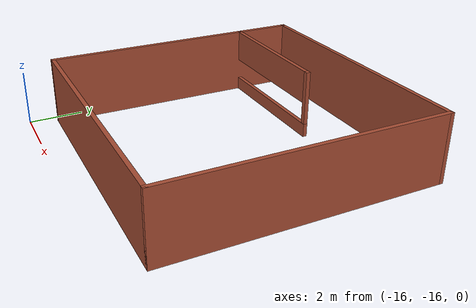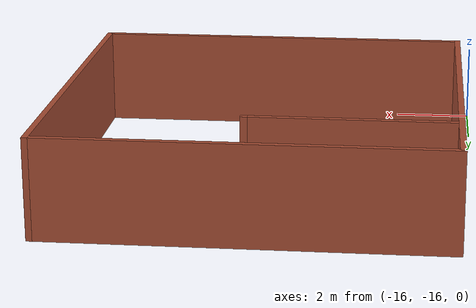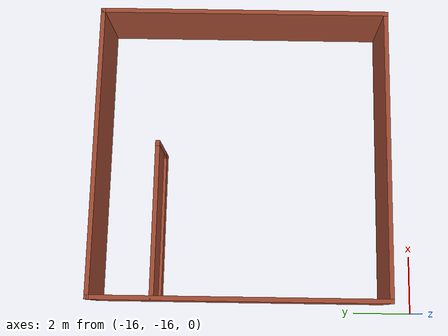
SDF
<?xml version='1.0'?>
<sdf version='1.7'>
  <model name='kitchen'>
    <pose>-7.84879 -7.5056 0 0 -0 0</pose>
    <link name='Wall_35'>
      <collision name='Wall_35_Collision'>
        <geometry>
          <box>
            <size>10 0.15 2.5</size>
          </box>
        </geometry>
        <pose>0 0 1.25 0 -0 0</pose>
      </collision>
      <visual name='Wall_35_Visual'>
        <pose>0 0 1.25 0 -0 0</pose>
        <geometry>
          <box>
            <size>10 0.15 2.5</size>
          </box>
        </geometry>
        <material>
          <script>
            <uri>file://media/materials/scripts/gazebo.material</uri>
            <name>Gazebo/Bricks</name>
          </script>
          <ambient>1 1 1 1</ambient>
        </material>
        <meta>
          <layer>0</layer>
        </meta>
      </visual>
      <pose>-2.84879 -7.4306 0 0 -0 0</pose>
    </link>
    <link name='Wall_36'>
      <collision name='Wall_36_Collision'>
        <geometry>
          <box>
            <size>10 0.15 2.5</size>
          </box>
        </geometry>
        <pose>0 0 1.25 0 -0 0</pose>
      </collision>
      <visual name='Wall_36_Visual'>
        <pose>0 0 1.25 0 -0 0</pose>
        <geometry>
          <box>
            <size>10 0.15 2.5</size>
          </box>
        </geometry>
        <material>
          <script>
            <uri>file://media/materials/scripts/gazebo.material</uri>
            <name>Gazebo/Bricks</name>
          </script>
          <ambient>1 1 1 1</ambient>
        </material>
        <meta>
          <layer>0</layer>
        </meta>
      </visual>
      <pose>2.07621 -2.5056 0 0 -0 1.5708</pose>
    </link>
    <link name='Wall_37'>
      <collision name='Wall_37_Collision'>
        <geometry>
          <box>
            <size>10 0.15 2.5</size>
          </box>
        </geometry>
        <pose>0 0 1.25 0 -0 0</pose>
      </collision>
      <visual name='Wall_37_Visual'>
        <pose>0 0 1.25 0 -0 0</pose>
        <geometry>
          <box>
            <size>10 0.15 2.5</size>
          </box>
        </geometry>
        <material>
          <script>
            <uri>file://media/materials/scripts/gazebo.material</uri>
            <name>Gazebo/Bricks</name>
          </script>
          <ambient>1 1 1 1</ambient>
        </material>
        <meta>
          <layer>0</layer>
        </meta>
      </visual>
      <pose>-2.84879 2.4194 0 0 -0 3.14159</pose>
    </link>
    <link name='Wall_38'>
      <collision name='Wall_38_Collision'>
        <geometry>
          <box>
            <size>10 0.15 2.5</size>
          </box>
        </geometry>
        <pose>0 0 1.25 0 -0 0</pose>
      </collision>
      <visual name='Wall_38_Visual'>
        <pose>0 0 1.25 0 -0 0</pose>
        <geometry>
          <box>
            <size>10 0.15 2.5</size>
          </box>
        </geometry>
        <material>
          <script>
            <uri>file://media/materials/scripts/gazebo.material</uri>
            <name>Gazebo/Bricks</name>
          </script>
          <ambient>1 1 1 1</ambient>
        </material>
        <meta>
          <layer>0</layer>
        </meta>
      </visual>
      <pose>-7.77379 -2.5056 0 0 -0 -1.5708</pose>
    </link>
    <link name='Wall_40'>
      <pose>-5.19337 0.325862 0 0 -0 0</pose>
      <visual name='Wall_40_Visual_0'>
        <pose>-2.59038 0 1.25 0 -0 0</pose>
        <geometry>
          <box>
            <size>0.069235 0.15 2.5</size>
          </box>
        </geometry>
        <material>
          <script>
            <uri>file://media/materials/scripts/gazebo.material</uri>
            <name>Gazebo/Bricks</name>
          </script>
          <ambient>1 1 1 1</ambient>
        </material>
        <meta>
          <layer>0</layer>
        </meta>
      </visual>
      <collision name='Wall_40_Collision_0'>
        <geometry>
          <box>
            <size>0.069235 0.15 2.5</size>
          </box>
        </geometry>
        <pose>-2.59038 0 1.25 0 -0 0</pose>
      </collision>
      <visual name='Wall_40_Visual_1'>
        <pose>0.034617 0 0.25 0 -0 0</pose>
        <geometry>
          <box>
            <size>5.18077 0.15 0.5</size>
          </box>
        </geometry>
        <material>
          <script>
            <uri>file://media/materials/scripts/gazebo.material</uri>
            <name>Gazebo/Bricks</name>
          </script>
          <ambient>1 1 1 1</ambient>
        </material>
        <meta>
          <layer>0</layer>
        </meta>
      </visual>
      <collision name='Wall_40_Collision_1'>
        <geometry>
          <box>
            <size>5.18077 0.15 0.5</size>
          </box>
        </geometry>
        <pose>0.034617 0 0.25 0 -0 0</pose>
      </collision>
      <visual name='Wall_40_Visual_2'>
        <pose>2.53462 0 1.5 0 -0 0</pose>
        <geometry>
          <box>
            <size>0.180765 0.15 2</size>
          </box>
        </geometry>
        <material>
          <script>
            <uri>file://media/materials/scripts/gazebo.material</uri>
            <name>Gazebo/Bricks</name>
          </script>
          <ambient>1 1 1 1</ambient>
        </material>
        <meta>
          <layer>0</layer>
        </meta>
      </visual>
      <collision name='Wall_40_Collision_2'>
        <geometry>
          <box>
            <size>0.180765 0.15 2</size>
          </box>
        </geometry>
        <pose>2.53462 0 1.5 0 -0 0</pose>
      </collision>
      <visual name='Wall_40_Visual_3'>
        <pose>-0.055765 0 1.9 0 -0 0</pose>
        <geometry>
          <box>
            <size>5 0.15 1.2</size>
          </box>
        </geometry>
        <material>
          <script>
            <uri>file://media/materials/scripts/gazebo.material</uri>
            <name>Gazebo/Bricks</name>
          </script>
          <ambient>1 1 1 1</ambient>
        </material>
        <meta>
          <layer>0</layer>
        </meta>
      </visual>
      <collision name='Wall_40_Collision_3'>
        <geometry>
          <box>
            <size>5 0.15 1.2</size>
          </box>
        </geometry>
        <pose>-0.055765 0 1.9 0 -0 0</pose>
      </collision>
    </link>
    <static>1</static>
  </model>
</sdf>
